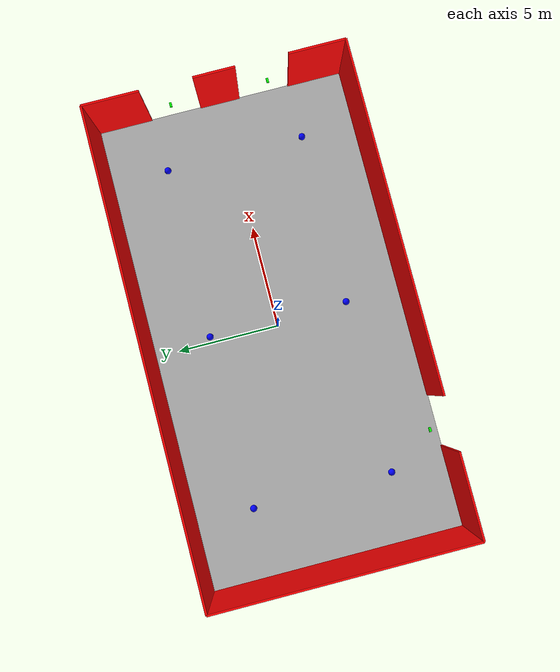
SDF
<?xml version="1.0" ?>
<sdf version="1.8">
  <world name="kuehlhaus_world">
    <plugin filename="gz-sim-sensors-system" name="gz::sim::systems::Sensors"><render_engine>ogre2</render_engine></plugin>
    <plugin filename="gz-sim-user-commands-system" name="gz::sim::systems::UserCommands"></plugin>
    <plugin filename="gz-sim-scene-broadcaster-system" name="gz::sim::systems::SceneBroadcaster"></plugin>

    <physics name="1ms" type="ignored">
      <max_step_size>0.001</max_step_size>
      <real_time_factor>1.0</real_time_factor>
    </physics>

    <light type="directional" name="sun">
      <cast_shadows>true</cast_shadows><pose>0 0 10 0 0 0</pose>
      <diffuse>0.8 0.8 0.8 1</diffuse><specular>0.2 0.2 0.2 1</specular>
    </light>

    <model name="floor">
      <static>true</static><link name="link">
        <collision name="c"><geometry><box><size>23.2 12.4 0.1</size></box></geometry></collision>
        <visual name="v"><geometry><box><size>23.2 12.4 0.1</size></box></geometry><material><ambient>0.3 0.3 0.3 1</ambient><diffuse>0.7 0.7 0.7 1</diffuse></material></visual>
      </link>
    </model>

<model name="wall_n"><static>true</static><pose>0 6.2 2 0 0 0</pose><link name="l"><collision name="c"><geometry><box><size>23.2 0.1 4</size></box></geometry></collision><visual name="v"><geometry><box><size>23.2 0.1 4</size></box></geometry><material><ambient>1 0 0 1</ambient><diffuse>1 0 0 1</diffuse></material></visual></link></model>
    <model name="wall_w"><static>true</static><pose>-11.6 0 2 0 0 0</pose><link name="l"><collision name="c"><geometry><box><size>0.1 12.4 4</size></box></geometry></collision><visual name="v"><geometry><box><size>0.1 12.4 4</size></box></geometry><material><ambient>1 0 0 1</ambient><diffuse>1 0 0 1</diffuse></material></visual></link></model>
    <model name="wall_s1"><static>true</static><pose>-9.6 -6.2 2 0 0 0</pose><link name="l"><collision name="c"><geometry><box><size>4.0 0.1 4</size></box></geometry></collision><visual name="v"><geometry><box><size>4.0 0.1 4</size></box></geometry><material><ambient>1 0 0 1</ambient><diffuse>1 0 0 1</diffuse></material></visual></link></model>
    <model name="wall_s2"><static>true</static><pose>3.25 -6.2 2 0 0 0</pose><link name="l"><collision name="c"><geometry><box><size>16.7 0.1 4</size></box></geometry></collision><visual name="v"><geometry><box><size>16.7 0.1 4</size></box></geometry><material><ambient>1 0 0 1</ambient><diffuse>1 0 0 1</diffuse></material></visual></link></model>
    <model name="wall_e_m"><static>true</static><pose>11.6 0 2 0 0 0</pose><link name="l"><collision name="c"><geometry><box><size>0.1 2.0 4</size></box></geometry></collision><visual name="v"><geometry><box><size>0.1 2.0 4</size></box></geometry><material><ambient>1 0 0 1</ambient><diffuse>1 0 0 1</diffuse></material></visual></link></model>
    <model name="wall_e_t"><static>true</static><pose>11.6 4.85 2 0 0 0</pose><link name="l"><collision name="c"><geometry><box><size>0.1 2.7 4</size></box></geometry></collision><visual name="v"><geometry><box><size>0.1 2.7 4</size></box></geometry><material><ambient>1 0 0 1</ambient><diffuse>1 0 0 1</diffuse></material></visual></link></model>
    <model name="wall_e_b"><static>true</static><pose>11.6 -4.85 2 0 0 0</pose><link name="l"><collision name="c"><geometry><box><size>0.1 2.7 4</size></box></geometry></collision><visual name="v"><geometry><box><size>0.1 2.7 4</size></box></geometry><material><ambient>1 0 0 1</ambient><diffuse>1 0 0 1</diffuse></material></visual></link></model>

    <model name="lidar_01"><static>true</static><pose>-7.7  3.1 4 0 3.14159 0</pose><link name="link"><visual name="v"><geometry><sphere><radius>0.15</radius></sphere></geometry><material><ambient>0 0 1 1</ambient></material></visual><sensor name="s" type="gpu_lidar"><update_rate>10</update_rate><lidar><scan><horizontal><samples>900</samples><min_angle>-3.14159</min_angle><max_angle>3.14159</max_angle></horizontal><vertical><samples>96</samples><min_angle>0.0</min_angle><max_angle>1.5708</max_angle></vertical></scan><range><min>0.1</min><max>30.0</max></range></lidar><visualize>true</visualize><topic>lidar_01/points</topic></sensor></link></model>
    <model name="lidar_02"><static>true</static><pose> 0     3.1 4 0 3.14159 0</pose><link name="link"><visual name="v"><geometry><sphere><radius>0.15</radius></sphere></geometry><material><ambient>0 0 1 1</ambient></material></visual><sensor name="s" type="gpu_lidar"><update_rate>10</update_rate><lidar><scan><horizontal><samples>900</samples><min_angle>-3.14159</min_angle><max_angle>3.14159</max_angle></horizontal><vertical><samples>96</samples><min_angle>0.0</min_angle><max_angle>1.5708</max_angle></vertical></scan><range><min>0.1</min><max>30.0</max></range></lidar><visualize>true</visualize><topic>lidar_02/points</topic></sensor></link></model>
    <model name="lidar_03"><static>true</static><pose> 7.7  3.1 4 0 3.14159 0</pose><link name="link"><visual name="v"><geometry><sphere><radius>0.15</radius></sphere></geometry><material><ambient>0 0 1 1</ambient></material></visual><sensor name="s" type="gpu_lidar"><update_rate>10</update_rate><lidar><scan><horizontal><samples>900</samples><min_angle>-3.14159</min_angle><max_angle>3.14159</max_angle></horizontal><vertical><samples>96</samples><min_angle>0.0</min_angle><max_angle>1.5708</max_angle></vertical></scan><range><min>0.1</min><max>30.0</max></range></lidar><visualize>true</visualize><topic>lidar_03/points</topic></sensor></link></model>
    <model name="lidar_04"><static>true</static><pose>-7.7 -3.1 4 0 3.14159 0</pose><link name="link"><visual name="v"><geometry><sphere><radius>0.15</radius></sphere></geometry><material><ambient>0 0 1 1</ambient></material></visual><sensor name="s" type="gpu_lidar"><update_rate>10</update_rate><lidar><scan><horizontal><samples>900</samples><min_angle>-3.14159</min_angle><max_angle>3.14159</max_angle></horizontal><vertical><samples>96</samples><min_angle>0.0</min_angle><max_angle>1.5708</max_angle></vertical></scan><range><min>0.1</min><max>30.0</max></range></lidar><visualize>true</visualize><topic>lidar_04/points</topic></sensor></link></model>
    <model name="lidar_05"><static>true</static><pose> 0    -3.1 4 0 3.14159 0</pose><link name="link"><visual name="v"><geometry><sphere><radius>0.15</radius></sphere></geometry><material><ambient>0 0 1 1</ambient></material></visual><sensor name="s" type="gpu_lidar"><update_rate>10</update_rate><lidar><scan><horizontal><samples>900</samples><min_angle>-3.14159</min_angle><max_angle>3.14159</max_angle></horizontal><vertical><samples>96</samples><min_angle>0.0</min_angle><max_angle>1.5708</max_angle></vertical></scan><range><min>0.1</min><max>30.0</max></range></lidar><visualize>true</visualize><topic>lidar_05/points</topic></sensor></link></model>
    <model name="lidar_06"><static>true</static><pose> 7.7 -3.1 4 0 3.14159 0</pose><link name="link"><visual name="v"><geometry><sphere><radius>0.15</radius></sphere></geometry><material><ambient>0 0 1 1</ambient></material></visual><sensor name="s" type="gpu_lidar"><update_rate>10</update_rate><lidar><scan><horizontal><samples>900</samples><min_angle>-3.14159</min_angle><max_angle>3.14159</max_angle></horizontal><vertical><samples>96</samples><min_angle>0.0</min_angle><max_angle>1.5708</max_angle></vertical></scan><range><min>0.1</min><max>30.0</max></range></lidar><visualize>true</visualize><topic>lidar_06/points</topic></sensor></link></model>

    <model name="cam_in"><static>true</static><pose>-6.35 -5.2 4 0 1.57 0</pose><link name="link"><visual name="v"><geometry><box><size>0.1 0.1 0.2</size></box></geometry><material><ambient>0 1 0 1</ambient></material></visual><sensor name="s" type="camera"><camera><horizontal_fov>1.2</horizontal_fov><image><width>1024</width><height>768</height><format>L8</format></image></camera><update_rate>10</update_rate><topic>cam_in/image</topic></sensor></link></model>
    <model name="cam_out_1"><static>true</static><pose>10.6 2.25 4 0 1.57 0</pose><link name="link"><visual name="v"><geometry><box><size>0.1 0.1 0.2</size></box></geometry><material><ambient>0 1 0 1</ambient></material></visual><sensor name="s" type="camera"><camera><horizontal_fov>1.2</horizontal_fov><image><width>1024</width><height>768</height><format>L8</format></image></camera><update_rate>10</update_rate><topic>cam_out_1/image</topic></sensor></link></model>
    <model name="cam_out_2"><static>true</static><pose>10.6 -2.25 4 0 1.57 0</pose><link name="link"><visual name="v"><geometry><box><size>0.1 0.1 0.2</size></box></geometry><material><ambient>0 1 0 1</ambient></material></visual><sensor name="s" type="camera"><camera><horizontal_fov>1.2</horizontal_fov><image><width>1024</width><height>768</height><format>L8</format></image></camera><update_rate>10</update_rate><topic>cam_out_2/image</topic></sensor></link></model>

  </world>
</sdf>
